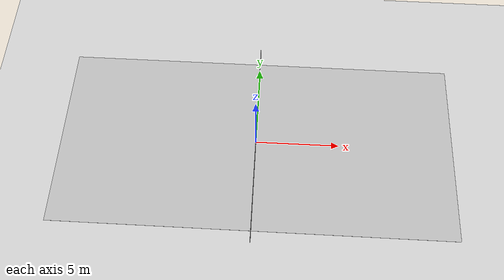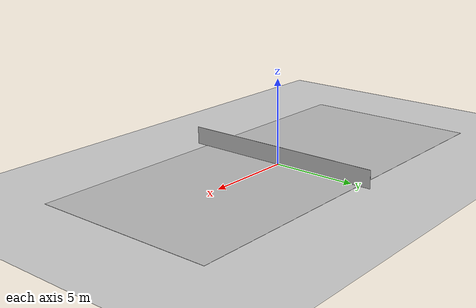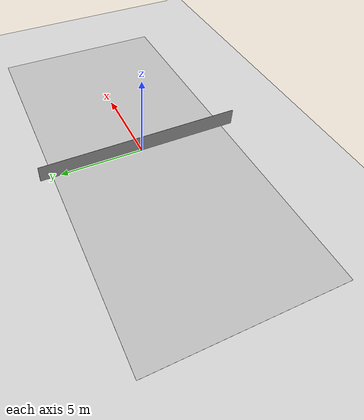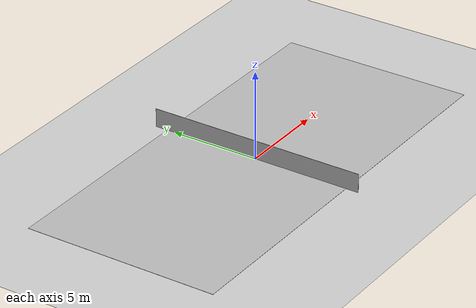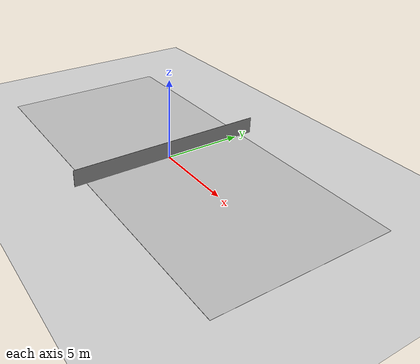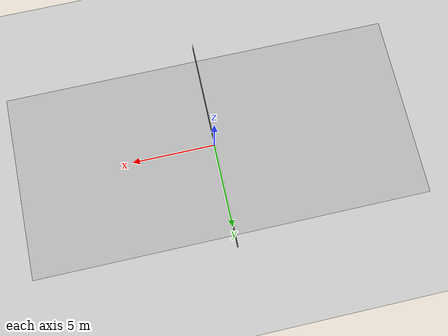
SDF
<?xml version="1.0"?>
<sdf version="1.4">
  <world name="default">

    <scene>
      <ambient>0.4 0.4 0.4 1</ambient>
      <background>0.7 0.7 0.7 1</background>
      <shadows>0</shadows>
    </scene>

    <!-- A global light source -->
    <include>
      <uri>model://sun</uri>
      <cast_shadows>false</cast_shadows>
    </include>

    <!-- A ground plane -->
    <include>
      <uri>model://ground_plane</uri>
    </include>

    <include>
      <uri>model://tennis_court</uri>
      <pose>0 0 0.002 0.0 0.0 0.0</pose>
    </include>

    <include>
      <uri>model://tennis_net</uri>
      <pose>0 0 0.003 0.0 0.0 0.0</pose>
    </include>

    <physics type="ode">
      <real_time_update_rate>1000.0</real_time_update_rate>
      <max_step_size>0.001</max_step_size>
      <real_time_factor>1</real_time_factor>
      <ode>
        <solver>
          <type>quick</type>
          <iters>150</iters>
          <precon_iters>0</precon_iters>
          <sor>1.400000</sor>
          <use_dynamic_moi_rescaling>1</use_dynamic_moi_rescaling>
        </solver>
        <constraints>
          <cfm>0.00001</cfm>
          <erp>0.2</erp>
          <contact_max_correcting_vel>2000.000000</contact_max_correcting_vel>
          <contact_surface_layer>0.01000</contact_surface_layer>
        </constraints>
      </ode>
    </physics>

  </world>
</sdf>

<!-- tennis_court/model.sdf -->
<sdf version="1.4">
   <model name="tennis_court">
      <static>true</static>
      <link name="link">
         <visual name="visual">
            <cast_shadows>false</cast_shadows>
            <geometry>
               <plane>
                  <normal>0 0 0</normal>
                  <size>23.78 10.97</size>
               </plane>
            </geometry>
            <material>
               <script>
                  <uri>model://tennis_court/materials/scripts</uri>
                  <uri>model://tennis_court/materials/textures/</uri>
                  <name>tennis_court/Image</name>
               </script>
            </material>
         </visual>
      </link>
   </model>
</sdf>

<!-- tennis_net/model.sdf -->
<sdf version="1.5">
    <model name="tennis_net">
        <static>true</static>

        <link name="tennis_net">
            <visual name="visual">
                <pose> 0 0 0.53 0 0 0 </pose>
                <geometry>
                    <box>
                        <size> 0.01 12.4 1.06 </size>
                    </box>
                </geometry>
                <material>
                    <script>
                        <uri>file://media/materials/scripts/gazebo.material</uri>
                        <name>Gazebo/Grey</name>
                    </script>
                </material>
            </visual>

            <collision name="collision">
                <pose> 0 0 0.53 0 0 0 </pose>
                <geometry>
                    <box>
                        <size> 0.2 12.4 1.06 </size>
                    </box>
                </geometry>
                <contact>
                    <collide_without_contact>1</collide_without_contact>
                    <collide_without_contact_bitmask>0</collide_without_contact_bitmask>
                    <collide_bitmask>1</collide_bitmask>
                    <poissons_ratio> 0.26 </poissons_ratio>
                    <elastic_modulus> 0.26 </elastic_modulus>
                    <ode>
                        <soft_cfm>0</soft_cfm>
                        <soft_erp>0.2</soft_erp>
                        <kp>100000000</kp>
                        <kd>1000</kd>
                        <max_vel>0</max_vel>
                        <min_depth>1</min_depth>
                    </ode>
                </contact>
            </collision>
        </link>
    </model>
</sdf>
